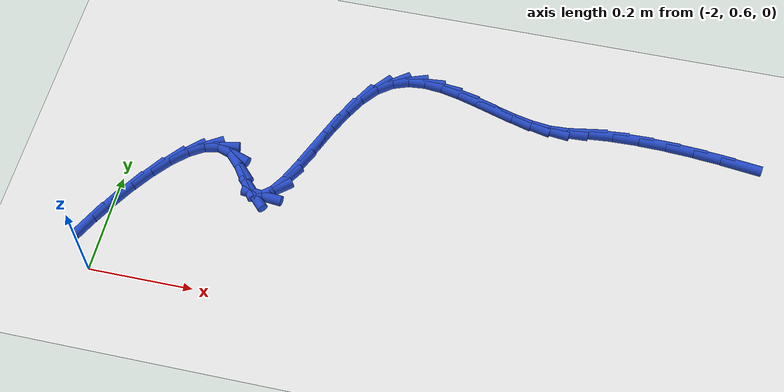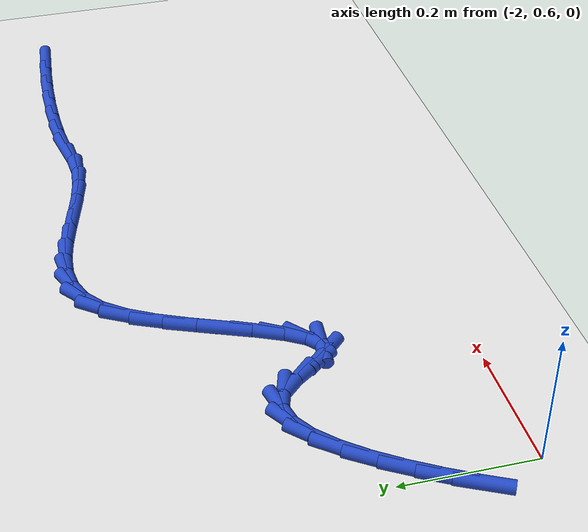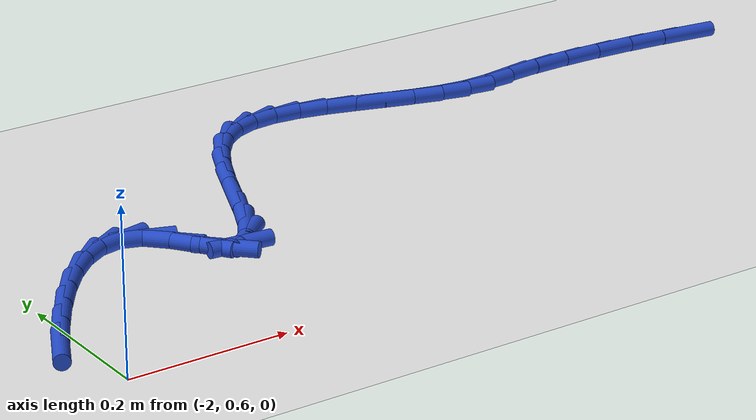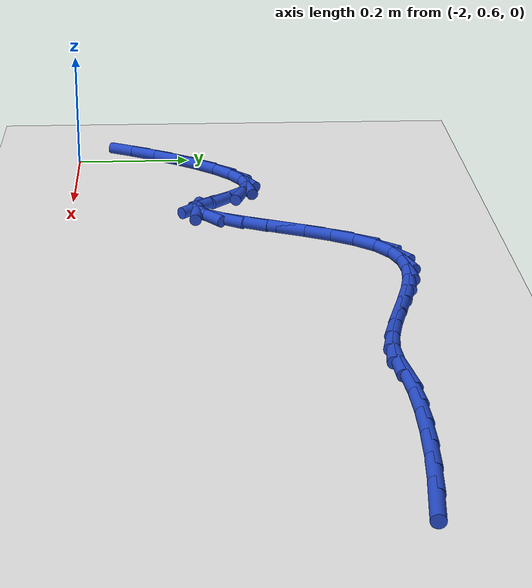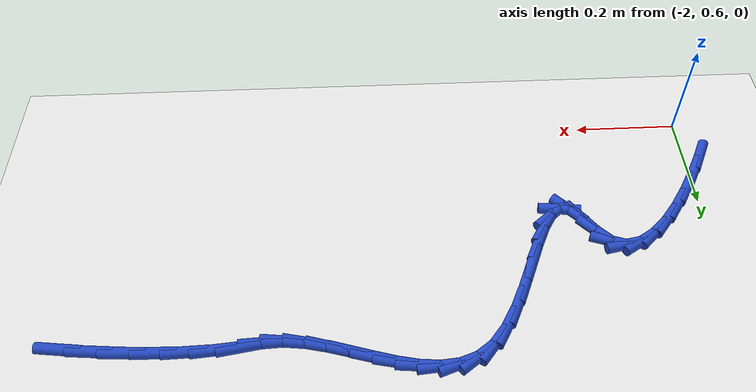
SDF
<sdf version="1.6">
 <world name="default">
  <model name="ground_plane">
   <static>1</static>
   <link name="link">
    <collision name="collision">
     <geometry><plane><normal>0 0 1</normal><size>100 100</size></plane></geometry>
     <surface><friction><ode><mu>100</mu><mu2>50</mu2></ode></friction></surface>
    </collision>
    <visual name="visual">
     <cast_shadows>0</cast_shadows>
     <geometry><plane><normal>0 0 1</normal><size>100 100</size></plane></geometry>
     <material>
      <script><uri>file://media/materials/scripts/gazebo.material</uri><name>Gazebo/WhiteGlow</name></script>
     </material>
    </visual>
   </link>
  </model>
  <model name="line">
   <link name="link_54">
    <pose>-0.8390595278787453 1.0757288141096304 0.01 0 1.57 -0.1217993279170763</pose>
    <collision name="collision">
     <geometry><cylinder><radius>0.01</radius><length>0.08</length></cylinder></geometry>
    </collision>
    <visual name="visual">
     <material>
      <script><name>Gazebo/Blue</name><uri>file://media/materials/scripts/gazebo.material</uri></script>
     </material>
     <geometry><cylinder><radius>0.01</radius><length>0.08</length></cylinder></geometry>
    </visual>
   </link>
   <link name="link_55">
    <pose>-0.8925547328914805 1.0822769066810087 0.01 0 1.57 -0.08797437883109932</pose>
    <collision name="collision">
     <geometry><cylinder><radius>0.01</radius><length>0.08</length></cylinder></geometry>
    </collision>
    <visual name="visual">
     <material>
      <script><name>Gazebo/Blue</name><uri>file://media/materials/scripts/gazebo.material</uri></script>
     </material>
     <geometry><cylinder><radius>0.01</radius><length>0.08</length></cylinder></geometry>
    </visual>
   </link>
   <link name="link_56">
    <pose>-0.9466778608803869 1.0870506771236246 0.01 0 1.57 -0.05329345445261039</pose>
    <collision name="collision">
     <geometry><cylinder><radius>0.01</radius><length>0.08</length></cylinder></geometry>
    </collision>
    <visual name="visual">
     <material>
      <script><name>Gazebo/Blue</name><uri>file://media/materials/scripts/gazebo.material</uri></script>
     </material>
     <geometry><cylinder><radius>0.01</radius><length>0.08</length></cylinder></geometry>
    </visual>
   </link>
   <link name="link_57">
    <pose>-1.0000557271975055 1.0898980642305005 0.01 0 1.57 -0.014999875020055994</pose>
    <collision name="collision">
     <geometry><cylinder><radius>0.01</radius><length>0.08</length></cylinder></geometry>
    </collision>
    <visual name="visual">
     <material>
      <script><name>Gazebo/Blue</name><uri>file://media/materials/scripts/gazebo.material</uri></script>
     </material>
     <geometry><cylinder><radius>0.01</radius><length>0.08</length></cylinder></geometry>
    </visual>
   </link>
   <link name="link_58">
    <pose>-1.0513151471948783 1.090667006794658 0.01 0 1.57 0.030587711301038586</pose>
    <collision name="collision">
     <geometry><cylinder><radius>0.01</radius><length>0.08</length></cylinder></geometry>
    </collision>
    <visual name="visual">
     <material>
      <script><name>Gazebo/Blue</name><uri>file://media/materials/scripts/gazebo.material</uri></script>
     </material>
     <geometry><cylinder><radius>0.01</radius><length>0.08</length></cylinder></geometry>
    </visual>
   </link>
   <link name="link_59">
    <pose>-1.0990829362245473 1.0892054436091194 0.01 0 1.57 0.08936192257964314</pose>
    <collision name="collision">
     <geometry><cylinder><radius>0.01</radius><length>0.08</length></cylinder></geometry>
    </collision>
    <visual name="visual">
     <material>
      <script><name>Gazebo/Blue</name><uri>file://media/materials/scripts/gazebo.material</uri></script>
     </material>
     <geometry><cylinder><radius>0.01</radius><length>0.08</length></cylinder></geometry>
    </visual>
   </link>
   <link name="link_60">
    <pose>-1.141985909638553 1.0853613134669065 0.01 0 1.57 0.16446638013485715</pose>
    <collision name="collision">
     <geometry><cylinder><radius>0.01</radius><length>0.08</length></cylinder></geometry>
    </collision>
    <visual name="visual">
     <material>
      <script><name>Gazebo/Blue</name><uri>file://media/materials/scripts/gazebo.material</uri></script>
     </material>
     <geometry><cylinder><radius>0.01</radius><length>0.08</length></cylinder></geometry>
    </visual>
   </link>
   <link name="link_61">
    <pose>-1.1788720965606032 1.0792394791473934 0.01 0 1.57 0.04945068046576197</pose>
    <collision name="collision">
     <geometry><cylinder><radius>0.01</radius><length>0.08</length></cylinder></geometry>
    </collision>
    <visual name="visual">
     <material>
      <script><name>Gazebo/Blue</name><uri>file://media/materials/scripts/gazebo.material</uri></script>
     </material>
     <geometry><cylinder><radius>0.01</radius><length>0.08</length></cylinder></geometry>
    </visual>
   </link>
   <link name="link_62">
    <pose>-1.2147236766185288 1.0774651475829788 0.01 0 1.57 -0.1163055687142159</pose>
    <collision name="collision">
     <geometry><cylinder><radius>0.01</radius><length>0.08</length></cylinder></geometry>
    </collision>
    <visual name="visual">
     <material>
      <script><name>Gazebo/Blue</name><uri>file://media/materials/scripts/gazebo.material</uri></script>
     </material>
     <geometry><cylinder><radius>0.01</radius><length>0.08</length></cylinder></geometry>
    </visual>
   </link>
   <link name="link_63">
    <pose>-1.2518745875602613 1.0818055941324756 0.01 0 1.57 -0.22411433266845757</pose>
    <collision name="collision">
     <geometry><cylinder><radius>0.01</radius><length>0.08</length></cylinder></geometry>
    </collision>
    <visual name="visual">
     <material>
      <script><name>Gazebo/Blue</name><uri>file://media/materials/scripts/gazebo.material</uri></script>
     </material>
     <geometry><cylinder><radius>0.01</radius><length>0.08</length></cylinder></geometry>
    </visual>
   </link>
   <link name="link_64">
    <pose>-1.2898695579406814 1.0904663005414297 0.01 0 1.57 -0.28358245034540364</pose>
    <collision name="collision">
     <geometry><cylinder><radius>0.01</radius><length>0.08</length></cylinder></geometry>
    </collision>
    <visual name="visual">
     <material>
      <script><name>Gazebo/Blue</name><uri>file://media/materials/scripts/gazebo.material</uri></script>
     </material>
     <geometry><cylinder><radius>0.01</radius><length>0.08</length></cylinder></geometry>
    </visual>
   </link>
   <link name="link_65">
    <pose>-1.3282533163146686 1.1016527485553893 0.01 0 1.57 -0.3015415064269528</pose>
    <collision name="collision">
     <geometry><cylinder><radius>0.01</radius><length>0.08</length></cylinder></geometry>
    </collision>
    <visual name="visual">
     <material>
      <script><name>Gazebo/Blue</name><uri>file://media/materials/scripts/gazebo.material</uri></script>
     </material>
     <geometry><cylinder><radius>0.01</radius><length>0.08</length></cylinder></geometry>
    </visual>
   </link>
   <link name="link_66">
    <pose>-1.366570591237104 1.1135704199199008 0.01 0 1.57 -0.27966055910275783</pose>
    <collision name="collision">
     <geometry><cylinder><radius>0.01</radius><length>0.08</length></cylinder></geometry>
    </collision>
    <visual name="visual">
     <material>
      <script><name>Gazebo/Blue</name><uri>file://media/materials/scripts/gazebo.material</uri></script>
     </material>
     <geometry><cylinder><radius>0.01</radius><length>0.08</length></cylinder></geometry>
    </visual>
   </link>
   <link name="link_67">
    <pose>-1.4043661112628676 1.1244247963805107 0.01 0 1.57 -0.21386727931768856</pose>
    <collision name="collision">
     <geometry><cylinder><radius>0.01</radius><length>0.08</length></cylinder></geometry>
    </collision>
    <visual name="visual">
     <material>
      <script><name>Gazebo/Blue</name><uri>file://media/materials/scripts/gazebo.material</uri></script>
     </material>
     <geometry><cylinder><radius>0.01</radius><length>0.08</length></cylinder></geometry>
    </visual>
   </link>
   <link name="link_68">
    <pose>-1.44118460494684 1.1324213596827672 0.01 0 1.57 -0.09422681563648228</pose>
    <collision name="collision">
     <geometry><cylinder><radius>0.01</radius><length>0.08</length></cylinder></geometry>
    </collision>
    <visual name="visual">
     <material>
      <script><name>Gazebo/Blue</name><uri>file://media/materials/scripts/gazebo.material</uri></script>
     </material>
     <geometry><cylinder><radius>0.01</radius><length>0.08</length></cylinder></geometry>
    </visual>
   </link>
   <link name="link_69">
    <pose>-1.476570800843901 1.1357655915722162 0.01 0 1.57 0.0923557684345151</pose>
    <collision name="collision">
     <geometry><cylinder><radius>0.01</radius><length>0.08</length></cylinder></geometry>
    </collision>
    <visual name="visual">
     <material>
      <script><name>Gazebo/Blue</name><uri>file://media/materials/scripts/gazebo.material</uri></script>
     </material>
     <geometry><cylinder><radius>0.01</radius><length>0.08</length></cylinder></geometry>
    </visual>
   </link>
   <link name="link_70">
    <pose>-1.5100694275089317 1.1326629737944052 0.01 0 1.57 0.34918507996924564</pose>
    <collision name="collision">
     <geometry><cylinder><radius>0.01</radius><length>0.08</length></cylinder></geometry>
    </collision>
    <visual name="visual">
     <material>
      <script><name>Gazebo/Blue</name><uri>file://media/materials/scripts/gazebo.material</uri></script>
     </material>
     <geometry><cylinder><radius>0.01</radius><length>0.08</length></cylinder></geometry>
    </visual>
   </link>
   <link name="link_71">
    <pose>-1.5412252134968114 1.121318988094881 0.01 0 1.57 0.6460104933664697</pose>
    <collision name="collision">
     <geometry><cylinder><radius>0.01</radius><length>0.08</length></cylinder></geometry>
    </collision>
    <visual name="visual">
     <material>
      <script><name>Gazebo/Blue</name><uri>file://media/materials/scripts/gazebo.material</uri></script>
     </material>
     <geometry><cylinder><radius>0.01</radius><length>0.08</length></cylinder></geometry>
    </visual>
   </link>
   <link name="link_72">
    <pose>-1.5695829226756641 1.099939308199791 0.01 0 1.57 0.9042417128419377</pose>
    <collision name="collision">
     <geometry><cylinder><radius>0.01</radius><length>0.08</length></cylinder></geometry>
    </collision>
    <visual name="visual">
     <material>
      <script><name>Gazebo/Blue</name><uri>file://media/materials/scripts/gazebo.material</uri></script>
     </material>
     <geometry><cylinder><radius>0.01</radius><length>0.08</length></cylinder></geometry>
    </visual>
   </link>
   <link name="link_73">
    <pose>-1.594880696962709 1.0677809084573333 0.01 0 1.57 1.0578681699400097</pose>
    <collision name="collision">
     <geometry><cylinder><radius>0.01</radius><length>0.08</length></cylinder></geometry>
    </collision>
    <visual name="visual">
     <material>
      <script><name>Gazebo/Blue</name><uri>file://media/materials/scripts/gazebo.material</uri></script>
     </material>
     <geometry><cylinder><radius>0.01</radius><length>0.08</length></cylinder></geometry>
    </visual>
   </link>
   <link name="link_74">
    <pose>-1.6175029501226472 1.0276142229824392 0.01 0 1.57 1.1411896429060027</pose>
    <collision name="collision">
     <geometry><cylinder><radius>0.01</radius><length>0.08</length></cylinder></geometry>
    </collision>
    <visual name="visual">
     <material>
      <script><name>Gazebo/Blue</name><uri>file://media/materials/scripts/gazebo.material</uri></script>
     </material>
     <geometry><cylinder><radius>0.01</radius><length>0.08</length></cylinder></geometry>
    </visual>
   </link>
   <link name="link_75">
    <pose>-1.6379689450329733 0.9829427936901437 0.01 0 1.57 1.1797658545691618</pose>
    <collision name="collision">
     <geometry><cylinder><radius>0.01</radius><length>0.08</length></cylinder></geometry>
    </collision>
    <visual name="visual">
     <material>
      <script><name>Gazebo/Blue</name><uri>file://media/materials/scripts/gazebo.material</uri></script>
     </material>
     <geometry><cylinder><radius>0.01</radius><length>0.08</length></cylinder></geometry>
    </visual>
   </link>
   <link name="link_76">
    <pose>-1.6567979445711805 0.9372701624954802 0.01 0 1.57 1.1814721033727984</pose>
    <collision name="collision">
     <geometry><cylinder><radius>0.01</radius><length>0.08</length></cylinder></geometry>
    </collision>
    <visual name="visual">
     <material>
      <script><name>Gazebo/Blue</name><uri>file://media/materials/scripts/gazebo.material</uri></script>
     </material>
     <geometry><cylinder><radius>0.01</radius><length>0.08</length></cylinder></geometry>
    </visual>
   </link>
   <link name="link_77">
    <pose>-1.6745092116147624 0.8940998713134823 0.01 0 1.57 1.139276356487078</pose>
    <collision name="collision">
     <geometry><cylinder><radius>0.01</radius><length>0.08</length></cylinder></geometry>
    </collision>
    <visual name="visual">
     <material>
      <script><name>Gazebo/Blue</name><uri>file://media/materials/scripts/gazebo.material</uri></script>
     </material>
     <geometry><cylinder><radius>0.01</radius><length>0.08</length></cylinder></geometry>
    </visual>
   </link>
   <link name="link_78">
    <pose>-1.6916220090412133 0.8569354620591857 0.01 0 1.57 1.0187444056600785</pose>
    <collision name="collision">
     <geometry><cylinder><radius>0.01</radius><length>0.08</length></cylinder></geometry>
    </collision>
    <visual name="visual">
     <material>
      <script><name>Gazebo/Blue</name><uri>file://media/materials/scripts/gazebo.material</uri></script>
     </material>
     <geometry><cylinder><radius>0.01</radius><length>0.08</length></cylinder></geometry>
    </visual>
   </link>
   <link name="link_79">
    <pose>-1.7086555997280262 0.829280476647623 0.01 0 1.57 0.6974559242132363</pose>
    <collision name="collision">
     <geometry><cylinder><radius>0.01</radius><length>0.08</length></cylinder></geometry>
    </collision>
    <visual name="visual">
     <material>
      <script><name>Gazebo/Blue</name><uri>file://media/materials/scripts/gazebo.material</uri></script>
     </material>
     <geometry><cylinder><radius>0.01</radius><length>0.08</length></cylinder></geometry>
    </visual>
   </link>
   <link name="link_80">
    <pose>-1.726129246552695 0.8146384569938293 0.01 0 1.57 -0.10134377124830996</pose>
    <collision name="collision">
     <geometry><cylinder><radius>0.01</radius><length>0.08</length></cylinder></geometry>
    </collision>
    <visual name="visual">
     <material>
      <script><name>Gazebo/Blue</name><uri>file://media/materials/scripts/gazebo.material</uri></script>
     </material>
     <geometry><cylinder><radius>0.01</radius><length>0.08</length></cylinder></geometry>
    </visual>
   </link>
   <link name="link_81">
    <pose>-1.7445622123927134 0.8165129450128383 0.01 0 1.57 -0.8104789308696024</pose>
    <collision name="collision">
     <geometry><cylinder><radius>0.01</radius><length>0.08</length></cylinder></geometry>
    </collision>
    <visual name="visual">
     <material>
      <script><name>Gazebo/Blue</name><uri>file://media/materials/scripts/gazebo.material</uri></script>
     </material>
     <geometry><cylinder><radius>0.01</radius><length>0.08</length></cylinder></geometry>
    </visual>
   </link>
   <link name="link_82">
    <pose>-1.764467790640403 0.8374429252138577 0.01 0 1.57 -0.9607457827842875</pose>
    <collision name="collision">
     <geometry><cylinder><radius>0.01</radius><length>0.08</length></cylinder></geometry>
    </collision>
    <visual name="visual">
     <material>
      <script><name>Gazebo/Blue</name><uri>file://media/materials/scripts/gazebo.material</uri></script>
     </material>
     <geometry><cylinder><radius>0.01</radius><length>0.08</length></cylinder></geometry>
    </visual>
   </link>
   <link name="link_83">
    <pose>-1.7862893037004761 0.8686613762554277 0.01 0 1.57 -0.8118003214259453</pose>
    <collision name="collision">
     <geometry><cylinder><radius>0.01</radius><length>0.08</length></cylinder></geometry>
    </collision>
    <visual name="visual">
     <material>
      <script><name>Gazebo/Blue</name><uri>file://media/materials/scripts/gazebo.material</uri></script>
     </material>
     <geometry><cylinder><radius>0.01</radius><length>0.08</length></cylinder></geometry>
    </visual>
   </link>
   <link name="link_84">
    <pose>-1.8104221932101077 0.8941034561566795 0.01 0 1.57 -0.33517622084625825</pose>
    <collision name="collision">
     <geometry><cylinder><radius>0.01</radius><length>0.08</length></cylinder></geometry>
    </collision>
    <visual name="visual">
     <material>
      <script><name>Gazebo/Blue</name><uri>file://media/materials/scripts/gazebo.material</uri></script>
     </material>
     <geometry><cylinder><radius>0.01</radius><length>0.08</length></cylinder></geometry>
    </visual>
   </link>
   <link name="link_85">
    <pose>-1.8369138577354451 0.9033309984039422 0.01 0 1.57 0.20247896470199084</pose>
    <collision name="collision">
     <geometry><cylinder><radius>0.01</radius><length>0.08</length></cylinder></geometry>
    </collision>
    <visual name="visual">
     <material>
      <script><name>Gazebo/Blue</name><uri>file://media/materials/scripts/gazebo.material</uri></script>
     </material>
     <geometry><cylinder><radius>0.01</radius><length>0.08</length></cylinder></geometry>
    </visual>
   </link>
   <link name="link_86">
    <pose>-1.8651090009938076 0.897542756343392 0.01 0 1.57 0.558020496113168</pose>
    <collision name="collision">
     <geometry><cylinder><radius>0.01</radius><length>0.08</length></cylinder></geometry>
    </collision>
    <visual name="visual">
     <material>
      <script><name>Gazebo/Blue</name><uri>file://media/materials/scripts/gazebo.material</uri></script>
     </material>
     <geometry><cylinder><radius>0.01</radius><length>0.08</length></cylinder></geometry>
    </visual>
   </link>
   <link name="link_87">
    <pose>-1.8942675058138925 0.879342152623927 0.01 0 1.57 0.7614930544464505</pose>
    <collision name="collision">
     <geometry><cylinder><radius>0.01</radius><length>0.08</length></cylinder></geometry>
    </collision>
    <visual name="visual">
     <material>
      <script><name>Gazebo/Blue</name><uri>file://media/materials/scripts/gazebo.material</uri></script>
     </material>
     <geometry><cylinder><radius>0.01</radius><length>0.08</length></cylinder></geometry>
    </visual>
   </link>
   <link name="link_88">
    <pose>-1.9236492550243975 0.8513326098944455 0.01 0 1.57 0.8841735003211059</pose>
    <collision name="collision">
     <geometry><cylinder><radius>0.01</radius><length>0.08</length></cylinder></geometry>
    </collision>
    <visual name="visual">
     <material>
      <script><name>Gazebo/Blue</name><uri>file://media/materials/scripts/gazebo.material</uri></script>
     </material>
     <geometry><cylinder><radius>0.01</radius><length>0.08</length></cylinder></geometry>
    </visual>
   </link>
   <link name="link_89">
    <pose>-1.9525141314540204 0.816117550803846 0.01 0 1.57 0.9645361518910581</pose>
    <collision name="collision">
     <geometry><cylinder><radius>0.01</radius><length>0.08</length></cylinder></geometry>
    </collision>
    <visual name="visual">
     <material>
      <script><name>Gazebo/Blue</name><uri>file://media/materials/scripts/gazebo.material</uri></script>
     </material>
     <geometry><cylinder><radius>0.01</radius><length>0.08</length></cylinder></geometry>
    </visual>
   </link>
   <link name="link_90">
    <pose>-1.9801220179314578 0.7763003980010258 0.01 0 1.57 1.0212608820415916</pose>
    <collision name="collision">
     <geometry><cylinder><radius>0.01</radius><length>0.08</length></cylinder></geometry>
    </collision>
    <visual name="visual">
     <material>
      <script><name>Gazebo/Blue</name><uri>file://media/materials/scripts/gazebo.material</uri></script>
     </material>
     <geometry><cylinder><radius>0.01</radius><length>0.08</length></cylinder></geometry>
    </visual>
   </link>
   <link name="link_91">
    <pose>-2.005732797285408 0.7344845741348845 0.01 0 1.57 1.0644157400740426</pose>
    <collision name="collision">
     <geometry><cylinder><radius>0.01</radius><length>0.08</length></cylinder></geometry>
    </collision>
    <visual name="visual">
     <material>
      <script><name>Gazebo/Blue</name><uri>file://media/materials/scripts/gazebo.material</uri></script>
     </material>
     <geometry><cylinder><radius>0.01</radius><length>0.08</length></cylinder></geometry>
    </visual>
   </link>
   <link name="link_92">
    <pose>-2.0286408403787655 0.6931802749105113 0.01 0 1.57 1.1037625655330692</pose>
    <collision name="collision">
     <geometry><cylinder><radius>0.01</radius><length>0.08</length></cylinder></geometry>
    </collision>
    <visual name="visual">
     <material>
      <script><name>Gazebo/Blue</name><uri>file://media/materials/scripts/gazebo.material</uri></script>
     </material>
     <geometry><cylinder><radius>0.01</radius><length>0.08</length></cylinder></geometry>
    </visual>
   </link>
  </model>
 </world>
</sdf>
